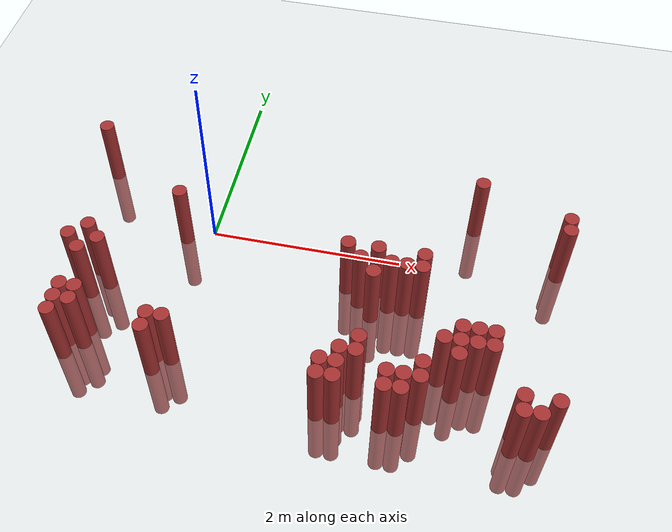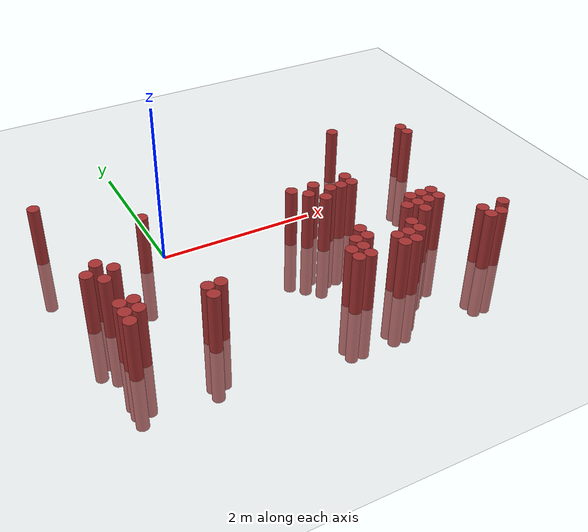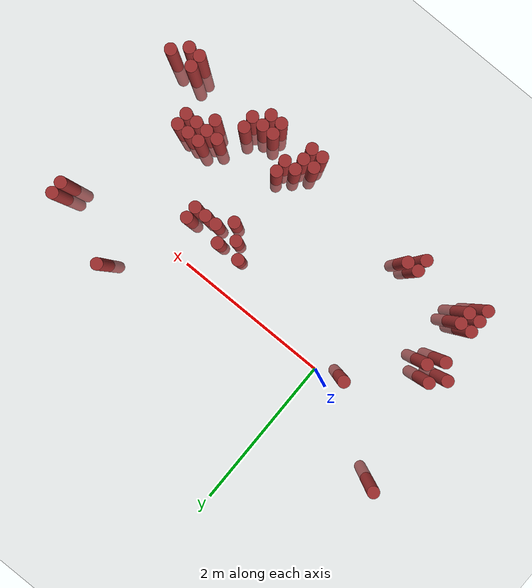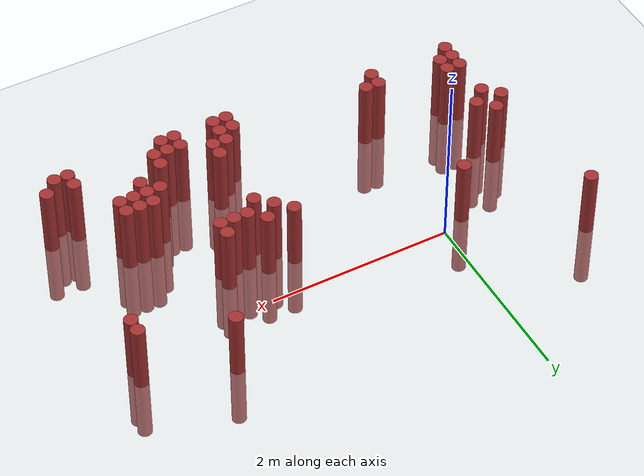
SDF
<sdf version="1.6">
 <world name="default">
  <model name="ground_plane">
   <static>1</static>
   <link name="link">
    <collision name="collision">
     <geometry><plane><normal>0 0 1</normal><size>100 100</size></plane></geometry>
     <surface><friction><ode><mu>100</mu><mu2>50</mu2></ode></friction></surface>
    </collision>
    <visual name="visual">
     <cast_shadows>0</cast_shadows>
     <geometry><plane><normal>0 0 1</normal><size>100 100</size></plane></geometry>
     <material>
      <script><uri>file://media/materials/scripts/gazebo.material</uri><name>Gazebo/Grey</name></script>
     </material>
    </visual>
   </link>
  </model>
  <model name="unit_cylinder_346">
   <static>1</static>
   <pose>-1.325000 0.625000 0.000000 0.000000 0.000000 0.000000</pose>
   <link name="link">
    <inertial>
     <mass>1</mass>
     <inertia><ixx>0.145833</ixx><ixy>0</ixy><ixz>0</ixz><iyy>0.145833</iyy><iyz>0</iyz><izz>0.125</izz></inertia>
    </inertial>
    <collision name="collision">
     <geometry><cylinder><radius>0.075000</radius><length>1.5</length></cylinder></geometry>
    </collision>
    <visual name="visual">
     <geometry><cylinder><radius>0.075000</radius><length>1.5</length></cylinder></geometry>
     <material>
      <ambient>0.648000 0.192000 0.192000 1</ambient>
      <diffuse>0.648000 0.192000 0.192000 1</diffuse>
     </material>
     <material>
      <script><name>Gazebo/Grey</name><uri>file://media/materials/scripts/gazebo.material</uri></script>
     </material>
    </visual>
   </link>
  </model>
  <model name="unit_cylinder_348">
   <static>1</static>
   <pose>-1.175000 -0.875000 0.000000 0.000000 0.000000 0.000000</pose>
   <link name="link">
    <inertial>
     <mass>1</mass>
     <inertia><ixx>0.145833</ixx><ixy>0</ixy><ixz>0</ixz><iyy>0.145833</iyy><iyz>0</iyz><izz>0.125</izz></inertia>
    </inertial>
    <collision name="collision">
     <geometry><cylinder><radius>0.075000</radius><length>1.5</length></cylinder></geometry>
    </collision>
    <visual name="visual">
     <geometry><cylinder><radius>0.075000</radius><length>1.5</length></cylinder></geometry>
     <material>
      <ambient>0.648000 0.192000 0.192000 1</ambient>
      <diffuse>0.648000 0.192000 0.192000 1</diffuse>
     </material>
     <material>
      <script><name>Gazebo/Grey</name><uri>file://media/materials/scripts/gazebo.material</uri></script>
     </material>
    </visual>
   </link>
  </model>
  <model name="unit_cylinder_350">
   <static>1</static>
   <pose>-1.025000 -1.775000 0.000000 0.000000 0.000000 0.000000</pose>
   <link name="link">
    <inertial>
     <mass>1</mass>
     <inertia><ixx>0.145833</ixx><ixy>0</ixy><ixz>0</ixz><iyy>0.145833</iyy><iyz>0</iyz><izz>0.125</izz></inertia>
    </inertial>
    <collision name="collision">
     <geometry><cylinder><radius>0.075000</radius><length>1.5</length></cylinder></geometry>
    </collision>
    <visual name="visual">
     <geometry><cylinder><radius>0.075000</radius><length>1.5</length></cylinder></geometry>
     <material>
      <ambient>0.648000 0.192000 0.192000 1</ambient>
      <diffuse>0.648000 0.192000 0.192000 1</diffuse>
     </material>
     <material>
      <script><name>Gazebo/Grey</name><uri>file://media/materials/scripts/gazebo.material</uri></script>
     </material>
    </visual>
   </link>
  </model>
  <model name="unit_cylinder_351">
   <static>1</static>
   <pose>-1.025000 -1.625000 0.000000 0.000000 0.000000 0.000000</pose>
   <link name="link">
    <inertial>
     <mass>1</mass>
     <inertia><ixx>0.145833</ixx><ixy>0</ixy><ixz>0</ixz><iyy>0.145833</iyy><iyz>0</iyz><izz>0.125</izz></inertia>
    </inertial>
    <collision name="collision">
     <geometry><cylinder><radius>0.075000</radius><length>1.5</length></cylinder></geometry>
    </collision>
    <visual name="visual">
     <geometry><cylinder><radius>0.075000</radius><length>1.5</length></cylinder></geometry>
     <material>
      <ambient>0.648000 0.192000 0.192000 1</ambient>
      <diffuse>0.648000 0.192000 0.192000 1</diffuse>
     </material>
     <material>
      <script><name>Gazebo/Grey</name><uri>file://media/materials/scripts/gazebo.material</uri></script>
     </material>
    </visual>
   </link>
  </model>
  <model name="unit_cylinder_352">
   <static>1</static>
   <pose>-1.025000 -1.475000 0.000000 0.000000 0.000000 0.000000</pose>
   <link name="link">
    <inertial>
     <mass>1</mass>
     <inertia><ixx>0.145833</ixx><ixy>0</ixy><ixz>0</ixz><iyy>0.145833</iyy><iyz>0</iyz><izz>0.125</izz></inertia>
    </inertial>
    <collision name="collision">
     <geometry><cylinder><radius>0.075000</radius><length>1.5</length></cylinder></geometry>
    </collision>
    <visual name="visual">
     <geometry><cylinder><radius>0.075000</radius><length>1.5</length></cylinder></geometry>
     <material>
      <ambient>0.648000 0.192000 0.192000 1</ambient>
      <diffuse>0.648000 0.192000 0.192000 1</diffuse>
     </material>
     <material>
      <script><name>Gazebo/Grey</name><uri>file://media/materials/scripts/gazebo.material</uri></script>
     </material>
    </visual>
   </link>
  </model>
  <model name="unit_cylinder_353">
   <static>1</static>
   <pose>-1.025000 -1.025000 0.000000 0.000000 0.000000 0.000000</pose>
   <link name="link">
    <inertial>
     <mass>1</mass>
     <inertia><ixx>0.145833</ixx><ixy>0</ixy><ixz>0</ixz><iyy>0.145833</iyy><iyz>0</iyz><izz>0.125</izz></inertia>
    </inertial>
    <collision name="collision">
     <geometry><cylinder><radius>0.075000</radius><length>1.5</length></cylinder></geometry>
    </collision>
    <visual name="visual">
     <geometry><cylinder><radius>0.075000</radius><length>1.5</length></cylinder></geometry>
     <material>
      <ambient>0.648000 0.192000 0.192000 1</ambient>
      <diffuse>0.648000 0.192000 0.192000 1</diffuse>
     </material>
     <material>
      <script><name>Gazebo/Grey</name><uri>file://media/materials/scripts/gazebo.material</uri></script>
     </material>
    </visual>
   </link>
  </model>
  <model name="unit_cylinder_354">
   <static>1</static>
   <pose>-1.025000 -0.725000 0.000000 0.000000 0.000000 0.000000</pose>
   <link name="link">
    <inertial>
     <mass>1</mass>
     <inertia><ixx>0.145833</ixx><ixy>0</ixy><ixz>0</ixz><iyy>0.145833</iyy><iyz>0</iyz><izz>0.125</izz></inertia>
    </inertial>
    <collision name="collision">
     <geometry><cylinder><radius>0.075000</radius><length>1.5</length></cylinder></geometry>
    </collision>
    <visual name="visual">
     <geometry><cylinder><radius>0.075000</radius><length>1.5</length></cylinder></geometry>
     <material>
      <ambient>0.648000 0.192000 0.192000 1</ambient>
      <diffuse>0.648000 0.192000 0.192000 1</diffuse>
     </material>
     <material>
      <script><name>Gazebo/Grey</name><uri>file://media/materials/scripts/gazebo.material</uri></script>
     </material>
    </visual>
   </link>
  </model>
  <model name="unit_cylinder_357">
   <static>1</static>
   <pose>-0.875000 -1.625000 0.000000 0.000000 0.000000 0.000000</pose>
   <link name="link">
    <inertial>
     <mass>1</mass>
     <inertia><ixx>0.145833</ixx><ixy>0</ixy><ixz>0</ixz><iyy>0.145833</iyy><iyz>0</iyz><izz>0.125</izz></inertia>
    </inertial>
    <collision name="collision">
     <geometry><cylinder><radius>0.075000</radius><length>1.5</length></cylinder></geometry>
    </collision>
    <visual name="visual">
     <geometry><cylinder><radius>0.075000</radius><length>1.5</length></cylinder></geometry>
     <material>
      <ambient>0.648000 0.192000 0.192000 1</ambient>
      <diffuse>0.648000 0.192000 0.192000 1</diffuse>
     </material>
     <material>
      <script><name>Gazebo/Grey</name><uri>file://media/materials/scripts/gazebo.material</uri></script>
     </material>
    </visual>
   </link>
  </model>
  <model name="unit_cylinder_358">
   <static>1</static>
   <pose>-0.875000 -1.475000 0.000000 0.000000 0.000000 0.000000</pose>
   <link name="link">
    <inertial>
     <mass>1</mass>
     <inertia><ixx>0.145833</ixx><ixy>0</ixy><ixz>0</ixz><iyy>0.145833</iyy><iyz>0</iyz><izz>0.125</izz></inertia>
    </inertial>
    <collision name="collision">
     <geometry><cylinder><radius>0.075000</radius><length>1.5</length></cylinder></geometry>
    </collision>
    <visual name="visual">
     <geometry><cylinder><radius>0.075000</radius><length>1.5</length></cylinder></geometry>
     <material>
      <ambient>0.648000 0.192000 0.192000 1</ambient>
      <diffuse>0.648000 0.192000 0.192000 1</diffuse>
     </material>
     <material>
      <script><name>Gazebo/Grey</name><uri>file://media/materials/scripts/gazebo.material</uri></script>
     </material>
    </visual>
   </link>
  </model>
  <model name="unit_cylinder_359">
   <static>1</static>
   <pose>-0.875000 -0.875000 0.000000 0.000000 0.000000 0.000000</pose>
   <link name="link">
    <inertial>
     <mass>1</mass>
     <inertia><ixx>0.145833</ixx><ixy>0</ixy><ixz>0</ixz><iyy>0.145833</iyy><iyz>0</iyz><izz>0.125</izz></inertia>
    </inertial>
    <collision name="collision">
     <geometry><cylinder><radius>0.075000</radius><length>1.5</length></cylinder></geometry>
    </collision>
    <visual name="visual">
     <geometry><cylinder><radius>0.075000</radius><length>1.5</length></cylinder></geometry>
     <material>
      <ambient>0.648000 0.192000 0.192000 1</ambient>
      <diffuse>0.648000 0.192000 0.192000 1</diffuse>
     </material>
     <material>
      <script><name>Gazebo/Grey</name><uri>file://media/materials/scripts/gazebo.material</uri></script>
     </material>
    </visual>
   </link>
  </model>
  <model name="unit_cylinder_376">
   <static>1</static>
   <pose>-0.275000 -0.125000 0.000000 0.000000 0.000000 0.000000</pose>
   <link name="link">
    <inertial>
     <mass>1</mass>
     <inertia><ixx>0.145833</ixx><ixy>0</ixy><ixz>0</ixz><iyy>0.145833</iyy><iyz>0</iyz><izz>0.125</izz></inertia>
    </inertial>
    <collision name="collision">
     <geometry><cylinder><radius>0.075000</radius><length>1.5</length></cylinder></geometry>
    </collision>
    <visual name="visual">
     <geometry><cylinder><radius>0.075000</radius><length>1.5</length></cylinder></geometry>
     <material>
      <ambient>0.648000 0.192000 0.192000 1</ambient>
      <diffuse>0.648000 0.192000 0.192000 1</diffuse>
     </material>
     <material>
      <script><name>Gazebo/Grey</name><uri>file://media/materials/scripts/gazebo.material</uri></script>
     </material>
    </visual>
   </link>
  </model>
  <model name="unit_cylinder_385">
   <static>1</static>
   <pose>-0.125000 -1.775000 0.000000 0.000000 0.000000 0.000000</pose>
   <link name="link">
    <inertial>
     <mass>1</mass>
     <inertia><ixx>0.145833</ixx><ixy>0</ixy><ixz>0</ixz><iyy>0.145833</iyy><iyz>0</iyz><izz>0.125</izz></inertia>
    </inertial>
    <collision name="collision">
     <geometry><cylinder><radius>0.075000</radius><length>1.5</length></cylinder></geometry>
    </collision>
    <visual name="visual">
     <geometry><cylinder><radius>0.075000</radius><length>1.5</length></cylinder></geometry>
     <material>
      <ambient>0.648000 0.192000 0.192000 1</ambient>
      <diffuse>0.648000 0.192000 0.192000 1</diffuse>
     </material>
     <material>
      <script><name>Gazebo/Grey</name><uri>file://media/materials/scripts/gazebo.material</uri></script>
     </material>
    </visual>
   </link>
  </model>
  <model name="unit_cylinder_386">
   <static>1</static>
   <pose>-0.125000 -1.625000 0.000000 0.000000 0.000000 0.000000</pose>
   <link name="link">
    <inertial>
     <mass>1</mass>
     <inertia><ixx>0.145833</ixx><ixy>0</ixy><ixz>0</ixz><iyy>0.145833</iyy><iyz>0</iyz><izz>0.125</izz></inertia>
    </inertial>
    <collision name="collision">
     <geometry><cylinder><radius>0.075000</radius><length>1.5</length></cylinder></geometry>
    </collision>
    <visual name="visual">
     <geometry><cylinder><radius>0.075000</radius><length>1.5</length></cylinder></geometry>
     <material>
      <ambient>0.648000 0.192000 0.192000 1</ambient>
      <diffuse>0.648000 0.192000 0.192000 1</diffuse>
     </material>
     <material>
      <script><name>Gazebo/Grey</name><uri>file://media/materials/scripts/gazebo.material</uri></script>
     </material>
    </visual>
   </link>
  </model>
  <model name="unit_cylinder_392">
   <static>1</static>
   <pose>0.025000 -1.625000 0.000000 0.000000 0.000000 0.000000</pose>
   <link name="link">
    <inertial>
     <mass>1</mass>
     <inertia><ixx>0.145833</ixx><ixy>0</ixy><ixz>0</ixz><iyy>0.145833</iyy><iyz>0</iyz><izz>0.125</izz></inertia>
    </inertial>
    <collision name="collision">
     <geometry><cylinder><radius>0.075000</radius><length>1.5</length></cylinder></geometry>
    </collision>
    <visual name="visual">
     <geometry><cylinder><radius>0.075000</radius><length>1.5</length></cylinder></geometry>
     <material>
      <ambient>0.648000 0.192000 0.192000 1</ambient>
      <diffuse>0.648000 0.192000 0.192000 1</diffuse>
     </material>
     <material>
      <script><name>Gazebo/Grey</name><uri>file://media/materials/scripts/gazebo.material</uri></script>
     </material>
    </visual>
   </link>
  </model>
  <model name="unit_cylinder_431">
   <static>1</static>
   <pose>1.525000 -1.925000 0.000000 0.000000 0.000000 0.000000</pose>
   <link name="link">
    <inertial>
     <mass>1</mass>
     <inertia><ixx>0.145833</ixx><ixy>0</ixy><ixz>0</ixz><iyy>0.145833</iyy><iyz>0</iyz><izz>0.125</izz></inertia>
    </inertial>
    <collision name="collision">
     <geometry><cylinder><radius>0.075000</radius><length>1.5</length></cylinder></geometry>
    </collision>
    <visual name="visual">
     <geometry><cylinder><radius>0.075000</radius><length>1.5</length></cylinder></geometry>
     <material>
      <ambient>0.648000 0.192000 0.192000 1</ambient>
      <diffuse>0.648000 0.192000 0.192000 1</diffuse>
     </material>
     <material>
      <script><name>Gazebo/Grey</name><uri>file://media/materials/scripts/gazebo.material</uri></script>
     </material>
    </visual>
   </link>
  </model>
  <model name="unit_cylinder_432">
   <static>1</static>
   <pose>1.525000 -1.775000 0.000000 0.000000 0.000000 0.000000</pose>
   <link name="link">
    <inertial>
     <mass>1</mass>
     <inertia><ixx>0.145833</ixx><ixy>0</ixy><ixz>0</ixz><iyy>0.145833</iyy><iyz>0</iyz><izz>0.125</izz></inertia>
    </inertial>
    <collision name="collision">
     <geometry><cylinder><radius>0.075000</radius><length>1.5</length></cylinder></geometry>
    </collision>
    <visual name="visual">
     <geometry><cylinder><radius>0.075000</radius><length>1.5</length></cylinder></geometry>
     <material>
      <ambient>0.648000 0.192000 0.192000 1</ambient>
      <diffuse>0.648000 0.192000 0.192000 1</diffuse>
     </material>
     <material>
      <script><name>Gazebo/Grey</name><uri>file://media/materials/scripts/gazebo.material</uri></script>
     </material>
    </visual>
   </link>
  </model>
  <model name="unit_cylinder_433">
   <static>1</static>
   <pose>1.525000 -0.425000 0.000000 0.000000 0.000000 0.000000</pose>
   <link name="link">
    <inertial>
     <mass>1</mass>
     <inertia><ixx>0.145833</ixx><ixy>0</ixy><ixz>0</ixz><iyy>0.145833</iyy><iyz>0</iyz><izz>0.125</izz></inertia>
    </inertial>
    <collision name="collision">
     <geometry><cylinder><radius>0.075000</radius><length>1.5</length></cylinder></geometry>
    </collision>
    <visual name="visual">
     <geometry><cylinder><radius>0.075000</radius><length>1.5</length></cylinder></geometry>
     <material>
      <ambient>0.648000 0.192000 0.192000 1</ambient>
      <diffuse>0.648000 0.192000 0.192000 1</diffuse>
     </material>
     <material>
      <script><name>Gazebo/Grey</name><uri>file://media/materials/scripts/gazebo.material</uri></script>
     </material>
    </visual>
   </link>
  </model>
  <model name="unit_cylinder_435">
   <static>1</static>
   <pose>1.675000 -1.925000 0.000000 0.000000 0.000000 0.000000</pose>
   <link name="link">
    <inertial>
     <mass>1</mass>
     <inertia><ixx>0.145833</ixx><ixy>0</ixy><ixz>0</ixz><iyy>0.145833</iyy><iyz>0</iyz><izz>0.125</izz></inertia>
    </inertial>
    <collision name="collision">
     <geometry><cylinder><radius>0.075000</radius><length>1.5</length></cylinder></geometry>
    </collision>
    <visual name="visual">
     <geometry><cylinder><radius>0.075000</radius><length>1.5</length></cylinder></geometry>
     <material>
      <ambient>0.648000 0.192000 0.192000 1</ambient>
      <diffuse>0.648000 0.192000 0.192000 1</diffuse>
     </material>
     <material>
      <script><name>Gazebo/Grey</name><uri>file://media/materials/scripts/gazebo.material</uri></script>
     </material>
    </visual>
   </link>
  </model>
  <model name="unit_cylinder_436">
   <static>1</static>
   <pose>1.675000 -1.775000 0.000000 0.000000 0.000000 0.000000</pose>
   <link name="link">
    <inertial>
     <mass>1</mass>
     <inertia><ixx>0.145833</ixx><ixy>0</ixy><ixz>0</ixz><iyy>0.145833</iyy><iyz>0</iyz><izz>0.125</izz></inertia>
    </inertial>
    <collision name="collision">
     <geometry><cylinder><radius>0.075000</radius><length>1.5</length></cylinder></geometry>
    </collision>
    <visual name="visual">
     <geometry><cylinder><radius>0.075000</radius><length>1.5</length></cylinder></geometry>
     <material>
      <ambient>0.648000 0.192000 0.192000 1</ambient>
      <diffuse>0.648000 0.192000 0.192000 1</diffuse>
     </material>
     <material>
      <script><name>Gazebo/Grey</name><uri>file://media/materials/scripts/gazebo.material</uri></script>
     </material>
    </visual>
   </link>
  </model>
  <model name="unit_cylinder_437">
   <static>1</static>
   <pose>1.675000 -1.625000 0.000000 0.000000 0.000000 0.000000</pose>
   <link name="link">
    <inertial>
     <mass>1</mass>
     <inertia><ixx>0.145833</ixx><ixy>0</ixy><ixz>0</ixz><iyy>0.145833</iyy><iyz>0</iyz><izz>0.125</izz></inertia>
    </inertial>
    <collision name="collision">
     <geometry><cylinder><radius>0.075000</radius><length>1.5</length></cylinder></geometry>
    </collision>
    <visual name="visual">
     <geometry><cylinder><radius>0.075000</radius><length>1.5</length></cylinder></geometry>
     <material>
      <ambient>0.648000 0.192000 0.192000 1</ambient>
      <diffuse>0.648000 0.192000 0.192000 1</diffuse>
     </material>
     <material>
      <script><name>Gazebo/Grey</name><uri>file://media/materials/scripts/gazebo.material</uri></script>
     </material>
    </visual>
   </link>
  </model>
  <model name="unit_cylinder_438">
   <static>1</static>
   <pose>1.675000 -0.575000 0.000000 0.000000 0.000000 0.000000</pose>
   <link name="link">
    <inertial>
     <mass>1</mass>
     <inertia><ixx>0.145833</ixx><ixy>0</ixy><ixz>0</ixz><iyy>0.145833</iyy><iyz>0</iyz><izz>0.125</izz></inertia>
    </inertial>
    <collision name="collision">
     <geometry><cylinder><radius>0.075000</radius><length>1.5</length></cylinder></geometry>
    </collision>
    <visual name="visual">
     <geometry><cylinder><radius>0.075000</radius><length>1.5</length></cylinder></geometry>
     <material>
      <ambient>0.648000 0.192000 0.192000 1</ambient>
      <diffuse>0.648000 0.192000 0.192000 1</diffuse>
     </material>
     <material>
      <script><name>Gazebo/Grey</name><uri>file://media/materials/scripts/gazebo.material</uri></script>
     </material>
    </visual>
   </link>
  </model>
  <model name="unit_cylinder_439">
   <static>1</static>
   <pose>1.825000 -1.625000 0.000000 0.000000 0.000000 0.000000</pose>
   <link name="link">
    <inertial>
     <mass>1</mass>
     <inertia><ixx>0.145833</ixx><ixy>0</ixy><ixz>0</ixz><iyy>0.145833</iyy><iyz>0</iyz><izz>0.125</izz></inertia>
    </inertial>
    <collision name="collision">
     <geometry><cylinder><radius>0.075000</radius><length>1.5</length></cylinder></geometry>
    </collision>
    <visual name="visual">
     <geometry><cylinder><radius>0.075000</radius><length>1.5</length></cylinder></geometry>
     <material>
      <ambient>0.648000 0.192000 0.192000 1</ambient>
      <diffuse>0.648000 0.192000 0.192000 1</diffuse>
     </material>
     <material>
      <script><name>Gazebo/Grey</name><uri>file://media/materials/scripts/gazebo.material</uri></script>
     </material>
    </visual>
   </link>
  </model>
  <model name="unit_cylinder_440">
   <static>1</static>
   <pose>1.825000 -1.475000 0.000000 0.000000 0.000000 0.000000</pose>
   <link name="link">
    <inertial>
     <mass>1</mass>
     <inertia><ixx>0.145833</ixx><ixy>0</ixy><ixz>0</ixz><iyy>0.145833</iyy><iyz>0</iyz><izz>0.125</izz></inertia>
    </inertial>
    <collision name="collision">
     <geometry><cylinder><radius>0.075000</radius><length>1.5</length></cylinder></geometry>
    </collision>
    <visual name="visual">
     <geometry><cylinder><radius>0.075000</radius><length>1.5</length></cylinder></geometry>
     <material>
      <ambient>0.648000 0.192000 0.192000 1</ambient>
      <diffuse>0.648000 0.192000 0.192000 1</diffuse>
     </material>
     <material>
      <script><name>Gazebo/Grey</name><uri>file://media/materials/scripts/gazebo.material</uri></script>
     </material>
    </visual>
   </link>
  </model>
  <model name="unit_cylinder_441">
   <static>1</static>
   <pose>1.825000 -0.725000 0.000000 0.000000 0.000000 0.000000</pose>
   <link name="link">
    <inertial>
     <mass>1</mass>
     <inertia><ixx>0.145833</ixx><ixy>0</ixy><ixz>0</ixz><iyy>0.145833</iyy><iyz>0</iyz><izz>0.125</izz></inertia>
    </inertial>
    <collision name="collision">
     <geometry><cylinder><radius>0.075000</radius><length>1.5</length></cylinder></geometry>
    </collision>
    <visual name="visual">
     <geometry><cylinder><radius>0.075000</radius><length>1.5</length></cylinder></geometry>
     <material>
      <ambient>0.648000 0.192000 0.192000 1</ambient>
      <diffuse>0.648000 0.192000 0.192000 1</diffuse>
     </material>
     <material>
      <script><name>Gazebo/Grey</name><uri>file://media/materials/scripts/gazebo.material</uri></script>
     </material>
    </visual>
   </link>
  </model>
  <model name="unit_cylinder_442">
   <static>1</static>
   <pose>1.825000 -0.425000 0.000000 0.000000 0.000000 0.000000</pose>
   <link name="link">
    <inertial>
     <mass>1</mass>
     <inertia><ixx>0.145833</ixx><ixy>0</ixy><ixz>0</ixz><iyy>0.145833</iyy><iyz>0</iyz><izz>0.125</izz></inertia>
    </inertial>
    <collision name="collision">
     <geometry><cylinder><radius>0.075000</radius><length>1.5</length></cylinder></geometry>
    </collision>
    <visual name="visual">
     <geometry><cylinder><radius>0.075000</radius><length>1.5</length></cylinder></geometry>
     <material>
      <ambient>0.648000 0.192000 0.192000 1</ambient>
      <diffuse>0.648000 0.192000 0.192000 1</diffuse>
     </material>
     <material>
      <script><name>Gazebo/Grey</name><uri>file://media/materials/scripts/gazebo.material</uri></script>
     </material>
    </visual>
   </link>
  </model>
  <model name="unit_cylinder_443">
   <static>1</static>
   <pose>1.975000 -0.575000 0.000000 0.000000 0.000000 0.000000</pose>
   <link name="link">
    <inertial>
     <mass>1</mass>
     <inertia><ixx>0.145833</ixx><ixy>0</ixy><ixz>0</ixz><iyy>0.145833</iyy><iyz>0</iyz><izz>0.125</izz></inertia>
    </inertial>
    <collision name="collision">
     <geometry><cylinder><radius>0.075000</radius><length>1.5</length></cylinder></geometry>
    </collision>
    <visual name="visual">
     <geometry><cylinder><radius>0.075000</radius><length>1.5</length></cylinder></geometry>
     <material>
      <ambient>0.648000 0.192000 0.192000 1</ambient>
      <diffuse>0.648000 0.192000 0.192000 1</diffuse>
     </material>
     <material>
      <script><name>Gazebo/Grey</name><uri>file://media/materials/scripts/gazebo.material</uri></script>
     </material>
    </visual>
   </link>
  </model>
  <model name="unit_cylinder_444">
   <static>1</static>
   <pose>2.125000 -1.925000 0.000000 0.000000 0.000000 0.000000</pose>
   <link name="link">
    <inertial>
     <mass>1</mass>
     <inertia><ixx>0.145833</ixx><ixy>0</ixy><ixz>0</ixz><iyy>0.145833</iyy><iyz>0</iyz><izz>0.125</izz></inertia>
    </inertial>
    <collision name="collision">
     <geometry><cylinder><radius>0.075000</radius><length>1.5</length></cylinder></geometry>
    </collision>
    <visual name="visual">
     <geometry><cylinder><radius>0.075000</radius><length>1.5</length></cylinder></geometry>
     <material>
      <ambient>0.648000 0.192000 0.192000 1</ambient>
      <diffuse>0.648000 0.192000 0.192000 1</diffuse>
     </material>
     <material>
      <script><name>Gazebo/Grey</name><uri>file://media/materials/scripts/gazebo.material</uri></script>
     </material>
    </visual>
   </link>
  </model>
  <model name="unit_cylinder_445">
   <static>1</static>
   <pose>2.125000 -1.775000 0.000000 0.000000 0.000000 0.000000</pose>
   <link name="link">
    <inertial>
     <mass>1</mass>
     <inertia><ixx>0.145833</ixx><ixy>0</ixy><ixz>0</ixz><iyy>0.145833</iyy><iyz>0</iyz><izz>0.125</izz></inertia>
    </inertial>
    <collision name="collision">
     <geometry><cylinder><radius>0.075000</radius><length>1.5</length></cylinder></geometry>
    </collision>
    <visual name="visual">
     <geometry><cylinder><radius>0.075000</radius><length>1.5</length></cylinder></geometry>
     <material>
      <ambient>0.648000 0.192000 0.192000 1</ambient>
      <diffuse>0.648000 0.192000 0.192000 1</diffuse>
     </material>
     <material>
      <script><name>Gazebo/Grey</name><uri>file://media/materials/scripts/gazebo.material</uri></script>
     </material>
    </visual>
   </link>
  </model>
  <model name="unit_cylinder_446">
   <static>1</static>
   <pose>2.125000 -0.575000 0.000000 0.000000 0.000000 0.000000</pose>
   <link name="link">
    <inertial>
     <mass>1</mass>
     <inertia><ixx>0.145833</ixx><ixy>0</ixy><ixz>0</ixz><iyy>0.145833</iyy><iyz>0</iyz><izz>0.125</izz></inertia>
    </inertial>
    <collision name="collision">
     <geometry><cylinder><radius>0.075000</radius><length>1.5</length></cylinder></geometry>
    </collision>
    <visual name="visual">
     <geometry><cylinder><radius>0.075000</radius><length>1.5</length></cylinder></geometry>
     <material>
      <ambient>0.648000 0.192000 0.192000 1</ambient>
      <diffuse>0.648000 0.192000 0.192000 1</diffuse>
     </material>
     <material>
      <script><name>Gazebo/Grey</name><uri>file://media/materials/scripts/gazebo.material</uri></script>
     </material>
    </visual>
   </link>
  </model>
  <model name="unit_cylinder_447">
   <static>1</static>
   <pose>2.275000 -1.925000 0.000000 0.000000 0.000000 0.000000</pose>
   <link name="link">
    <inertial>
     <mass>1</mass>
     <inertia><ixx>0.145833</ixx><ixy>0</ixy><ixz>0</ixz><iyy>0.145833</iyy><iyz>0</iyz><izz>0.125</izz></inertia>
    </inertial>
    <collision name="collision">
     <geometry><cylinder><radius>0.075000</radius><length>1.5</length></cylinder></geometry>
    </collision>
    <visual name="visual">
     <geometry><cylinder><radius>0.075000</radius><length>1.5</length></cylinder></geometry>
     <material>
      <ambient>0.648000 0.192000 0.192000 1</ambient>
      <diffuse>0.648000 0.192000 0.192000 1</diffuse>
     </material>
     <material>
      <script><name>Gazebo/Grey</name><uri>file://media/materials/scripts/gazebo.material</uri></script>
     </material>
    </visual>
   </link>
  </model>
  <model name="unit_cylinder_448">
   <static>1</static>
   <pose>2.275000 -1.775000 0.000000 0.000000 0.000000 0.000000</pose>
   <link name="link">
    <inertial>
     <mass>1</mass>
     <inertia><ixx>0.145833</ixx><ixy>0</ixy><ixz>0</ixz><iyy>0.145833</iyy><iyz>0</iyz><izz>0.125</izz></inertia>
    </inertial>
    <collision name="collision">
     <geometry><cylinder><radius>0.075000</radius><length>1.5</length></cylinder></geometry>
    </collision>
    <visual name="visual">
     <geometry><cylinder><radius>0.075000</radius><length>1.5</length></cylinder></geometry>
     <material>
      <ambient>0.648000 0.192000 0.192000 1</ambient>
      <diffuse>0.648000 0.192000 0.192000 1</diffuse>
     </material>
     <material>
      <script><name>Gazebo/Grey</name><uri>file://media/materials/scripts/gazebo.material</uri></script>
     </material>
    </visual>
   </link>
  </model>
  <model name="unit_cylinder_449">
   <static>1</static>
   <pose>2.275000 -0.575000 0.000000 0.000000 0.000000 0.000000</pose>
   <link name="link">
    <inertial>
     <mass>1</mass>
     <inertia><ixx>0.145833</ixx><ixy>0</ixy><ixz>0</ixz><iyy>0.145833</iyy><iyz>0</iyz><izz>0.125</izz></inertia>
    </inertial>
    <collision name="collision">
     <geometry><cylinder><radius>0.075000</radius><length>1.5</length></cylinder></geometry>
    </collision>
    <visual name="visual">
     <geometry><cylinder><radius>0.075000</radius><length>1.5</length></cylinder></geometry>
     <material>
      <ambient>0.648000 0.192000 0.192000 1</ambient>
      <diffuse>0.648000 0.192000 0.192000 1</diffuse>
     </material>
     <material>
      <script><name>Gazebo/Grey</name><uri>file://media/materials/scripts/gazebo.material</uri></script>
     </material>
    </visual>
   </link>
  </model>
  <model name="unit_cylinder_450">
   <static>1</static>
   <pose>2.275000 -0.425000 0.000000 0.000000 0.000000 0.000000</pose>
   <link name="link">
    <inertial>
     <mass>1</mass>
     <inertia><ixx>0.145833</ixx><ixy>0</ixy><ixz>0</ixz><iyy>0.145833</iyy><iyz>0</iyz><izz>0.125</izz></inertia>
    </inertial>
    <collision name="collision">
     <geometry><cylinder><radius>0.075000</radius><length>1.5</length></cylinder></geometry>
    </collision>
    <visual name="visual">
     <geometry><cylinder><radius>0.075000</radius><length>1.5</length></cylinder></geometry>
     <material>
      <ambient>0.648000 0.192000 0.192000 1</ambient>
      <diffuse>0.648000 0.192000 0.192000 1</diffuse>
     </material>
     <material>
      <script><name>Gazebo/Grey</name><uri>file://media/materials/scripts/gazebo.material</uri></script>
     </material>
    </visual>
   </link>
  </model>
  <model name="unit_cylinder_452">
   <static>1</static>
   <pose>2.425000 -1.775000 0.000000 0.000000 0.000000 0.000000</pose>
   <link name="link">
    <inertial>
     <mass>1</mass>
     <inertia><ixx>0.145833</ixx><ixy>0</ixy><ixz>0</ixz><iyy>0.145833</iyy><iyz>0</iyz><izz>0.125</izz></inertia>
    </inertial>
    <collision name="collision">
     <geometry><cylinder><radius>0.075000</radius><length>1.5</length></cylinder></geometry>
    </collision>
    <visual name="visual">
     <geometry><cylinder><radius>0.075000</radius><length>1.5</length></cylinder></geometry>
     <material>
      <ambient>0.648000 0.192000 0.192000 1</ambient>
      <diffuse>0.648000 0.192000 0.192000 1</diffuse>
     </material>
     <material>
      <script><name>Gazebo/Grey</name><uri>file://media/materials/scripts/gazebo.material</uri></script>
     </material>
    </visual>
   </link>
  </model>
  <model name="unit_cylinder_453">
   <static>1</static>
   <pose>2.425000 -1.625000 0.000000 0.000000 0.000000 0.000000</pose>
   <link name="link">
    <inertial>
     <mass>1</mass>
     <inertia><ixx>0.145833</ixx><ixy>0</ixy><ixz>0</ixz><iyy>0.145833</iyy><iyz>0</iyz><izz>0.125</izz></inertia>
    </inertial>
    <collision name="collision">
     <geometry><cylinder><radius>0.075000</radius><length>1.5</length></cylinder></geometry>
    </collision>
    <visual name="visual">
     <geometry><cylinder><radius>0.075000</radius><length>1.5</length></cylinder></geometry>
     <material>
      <ambient>0.648000 0.192000 0.192000 1</ambient>
      <diffuse>0.648000 0.192000 0.192000 1</diffuse>
     </material>
     <material>
      <script><name>Gazebo/Grey</name><uri>file://media/materials/scripts/gazebo.material</uri></script>
     </material>
    </visual>
   </link>
  </model>
  <model name="unit_cylinder_456">
   <static>1</static>
   <pose>2.575000 -1.325000 0.000000 0.000000 0.000000 0.000000</pose>
   <link name="link">
    <inertial>
     <mass>1</mass>
     <inertia><ixx>0.145833</ixx><ixy>0</ixy><ixz>0</ixz><iyy>0.145833</iyy><iyz>0</iyz><izz>0.125</izz></inertia>
    </inertial>
    <collision name="collision">
     <geometry><cylinder><radius>0.075000</radius><length>1.5</length></cylinder></geometry>
    </collision>
    <visual name="visual">
     <geometry><cylinder><radius>0.075000</radius><length>1.5</length></cylinder></geometry>
     <material>
      <ambient>0.648000 0.192000 0.192000 1</ambient>
      <diffuse>0.648000 0.192000 0.192000 1</diffuse>
     </material>
     <material>
      <script><name>Gazebo/Grey</name><uri>file://media/materials/scripts/gazebo.material</uri></script>
     </material>
    </visual>
   </link>
  </model>
  <model name="unit_cylinder_459">
   <static>1</static>
   <pose>2.725000 -1.475000 0.000000 0.000000 0.000000 0.000000</pose>
   <link name="link">
    <inertial>
     <mass>1</mass>
     <inertia><ixx>0.145833</ixx><ixy>0</ixy><ixz>0</ixz><iyy>0.145833</iyy><iyz>0</iyz><izz>0.125</izz></inertia>
    </inertial>
    <collision name="collision">
     <geometry><cylinder><radius>0.075000</radius><length>1.5</length></cylinder></geometry>
    </collision>
    <visual name="visual">
     <geometry><cylinder><radius>0.075000</radius><length>1.5</length></cylinder></geometry>
     <material>
      <ambient>0.648000 0.192000 0.192000 1</ambient>
      <diffuse>0.648000 0.192000 0.192000 1</diffuse>
     </material>
     <material>
      <script><name>Gazebo/Grey</name><uri>file://media/materials/scripts/gazebo.material</uri></script>
     </material>
    </visual>
   </link>
  </model>
  <model name="unit_cylinder_460">
   <static>1</static>
   <pose>2.725000 -1.325000 0.000000 0.000000 0.000000 0.000000</pose>
   <link name="link">
    <inertial>
     <mass>1</mass>
     <inertia><ixx>0.145833</ixx><ixy>0</ixy><ixz>0</ixz><iyy>0.145833</iyy><iyz>0</iyz><izz>0.125</izz></inertia>
    </inertial>
    <collision name="collision">
     <geometry><cylinder><radius>0.075000</radius><length>1.5</length></cylinder></geometry>
    </collision>
    <visual name="visual">
     <geometry><cylinder><radius>0.075000</radius><length>1.5</length></cylinder></geometry>
     <material>
      <ambient>0.648000 0.192000 0.192000 1</ambient>
      <diffuse>0.648000 0.192000 0.192000 1</diffuse>
     </material>
     <material>
      <script><name>Gazebo/Grey</name><uri>file://media/materials/scripts/gazebo.material</uri></script>
     </material>
    </visual>
   </link>
  </model>
  <model name="unit_cylinder_461">
   <static>1</static>
   <pose>2.725000 -1.175000 0.000000 0.000000 0.000000 0.000000</pose>
   <link name="link">
    <inertial>
     <mass>1</mass>
     <inertia><ixx>0.145833</ixx><ixy>0</ixy><ixz>0</ixz><iyy>0.145833</iyy><iyz>0</iyz><izz>0.125</izz></inertia>
    </inertial>
    <collision name="collision">
     <geometry><cylinder><radius>0.075000</radius><length>1.5</length></cylinder></geometry>
    </collision>
    <visual name="visual">
     <geometry><cylinder><radius>0.075000</radius><length>1.5</length></cylinder></geometry>
     <material>
      <ambient>0.648000 0.192000 0.192000 1</ambient>
      <diffuse>0.648000 0.192000 0.192000 1</diffuse>
     </material>
     <material>
      <script><name>Gazebo/Grey</name><uri>file://media/materials/scripts/gazebo.material</uri></script>
     </material>
    </visual>
   </link>
  </model>
  <model name="unit_cylinder_462">
   <static>1</static>
   <pose>2.725000 0.625000 0.000000 0.000000 0.000000 0.000000</pose>
   <link name="link">
    <inertial>
     <mass>1</mass>
     <inertia><ixx>0.145833</ixx><ixy>0</ixy><ixz>0</ixz><iyy>0.145833</iyy><iyz>0</iyz><izz>0.125</izz></inertia>
    </inertial>
    <collision name="collision">
     <geometry><cylinder><radius>0.075000</radius><length>1.5</length></cylinder></geometry>
    </collision>
    <visual name="visual">
     <geometry><cylinder><radius>0.075000</radius><length>1.5</length></cylinder></geometry>
     <material>
      <ambient>0.648000 0.192000 0.192000 1</ambient>
      <diffuse>0.648000 0.192000 0.192000 1</diffuse>
     </material>
     <material>
      <script><name>Gazebo/Grey</name><uri>file://media/materials/scripts/gazebo.material</uri></script>
     </material>
    </visual>
   </link>
  </model>
  <model name="unit_cylinder_464">
   <static>1</static>
   <pose>2.875000 -1.325000 0.000000 0.000000 0.000000 0.000000</pose>
   <link name="link">
    <inertial>
     <mass>1</mass>
     <inertia><ixx>0.145833</ixx><ixy>0</ixy><ixz>0</ixz><iyy>0.145833</iyy><iyz>0</iyz><izz>0.125</izz></inertia>
    </inertial>
    <collision name="collision">
     <geometry><cylinder><radius>0.075000</radius><length>1.5</length></cylinder></geometry>
    </collision>
    <visual name="visual">
     <geometry><cylinder><radius>0.075000</radius><length>1.5</length></cylinder></geometry>
     <material>
      <ambient>0.648000 0.192000 0.192000 1</ambient>
      <diffuse>0.648000 0.192000 0.192000 1</diffuse>
     </material>
     <material>
      <script><name>Gazebo/Grey</name><uri>file://media/materials/scripts/gazebo.material</uri></script>
     </material>
    </visual>
   </link>
  </model>
  <model name="unit_cylinder_465">
   <static>1</static>
   <pose>2.875000 -1.175000 0.000000 0.000000 0.000000 0.000000</pose>
   <link name="link">
    <inertial>
     <mass>1</mass>
     <inertia><ixx>0.145833</ixx><ixy>0</ixy><ixz>0</ixz><iyy>0.145833</iyy><iyz>0</iyz><izz>0.125</izz></inertia>
    </inertial>
    <collision name="collision">
     <geometry><cylinder><radius>0.075000</radius><length>1.5</length></cylinder></geometry>
    </collision>
    <visual name="visual">
     <geometry><cylinder><radius>0.075000</radius><length>1.5</length></cylinder></geometry>
     <material>
      <ambient>0.648000 0.192000 0.192000 1</ambient>
      <diffuse>0.648000 0.192000 0.192000 1</diffuse>
     </material>
     <material>
      <script><name>Gazebo/Grey</name><uri>file://media/materials/scripts/gazebo.material</uri></script>
     </material>
    </visual>
   </link>
  </model>
  <model name="unit_cylinder_469">
   <static>1</static>
   <pose>3.025000 -1.325000 0.000000 0.000000 0.000000 0.000000</pose>
   <link name="link">
    <inertial>
     <mass>1</mass>
     <inertia><ixx>0.145833</ixx><ixy>0</ixy><ixz>0</ixz><iyy>0.145833</iyy><iyz>0</iyz><izz>0.125</izz></inertia>
    </inertial>
    <collision name="collision">
     <geometry><cylinder><radius>0.075000</radius><length>1.5</length></cylinder></geometry>
    </collision>
    <visual name="visual">
     <geometry><cylinder><radius>0.075000</radius><length>1.5</length></cylinder></geometry>
     <material>
      <ambient>0.648000 0.192000 0.192000 1</ambient>
      <diffuse>0.648000 0.192000 0.192000 1</diffuse>
     </material>
     <material>
      <script><name>Gazebo/Grey</name><uri>file://media/materials/scripts/gazebo.material</uri></script>
     </material>
    </visual>
   </link>
  </model>
  <model name="unit_cylinder_470">
   <static>1</static>
   <pose>3.025000 -1.175000 0.000000 0.000000 0.000000 0.000000</pose>
   <link name="link">
    <inertial>
     <mass>1</mass>
     <inertia><ixx>0.145833</ixx><ixy>0</ixy><ixz>0</ixz><iyy>0.145833</iyy><iyz>0</iyz><izz>0.125</izz></inertia>
    </inertial>
    <collision name="collision">
     <geometry><cylinder><radius>0.075000</radius><length>1.5</length></cylinder></geometry>
    </collision>
    <visual name="visual">
     <geometry><cylinder><radius>0.075000</radius><length>1.5</length></cylinder></geometry>
     <material>
      <ambient>0.648000 0.192000 0.192000 1</ambient>
      <diffuse>0.648000 0.192000 0.192000 1</diffuse>
     </material>
     <material>
      <script><name>Gazebo/Grey</name><uri>file://media/materials/scripts/gazebo.material</uri></script>
     </material>
    </visual>
   </link>
  </model>
  <model name="unit_cylinder_474">
   <static>1</static>
   <pose>3.325000 -1.925000 0.000000 0.000000 0.000000 0.000000</pose>
   <link name="link">
    <inertial>
     <mass>1</mass>
     <inertia><ixx>0.145833</ixx><ixy>0</ixy><ixz>0</ixz><iyy>0.145833</iyy><iyz>0</iyz><izz>0.125</izz></inertia>
    </inertial>
    <collision name="collision">
     <geometry><cylinder><radius>0.075000</radius><length>1.5</length></cylinder></geometry>
    </collision>
    <visual name="visual">
     <geometry><cylinder><radius>0.075000</radius><length>1.5</length></cylinder></geometry>
     <material>
      <ambient>0.648000 0.192000 0.192000 1</ambient>
      <diffuse>0.648000 0.192000 0.192000 1</diffuse>
     </material>
     <material>
      <script><name>Gazebo/Grey</name><uri>file://media/materials/scripts/gazebo.material</uri></script>
     </material>
    </visual>
   </link>
  </model>
  <model name="unit_cylinder_475">
   <static>1</static>
   <pose>3.325000 -1.775000 0.000000 0.000000 0.000000 0.000000</pose>
   <link name="link">
    <inertial>
     <mass>1</mass>
     <inertia><ixx>0.145833</ixx><ixy>0</ixy><ixz>0</ixz><iyy>0.145833</iyy><iyz>0</iyz><izz>0.125</izz></inertia>
    </inertial>
    <collision name="collision">
     <geometry><cylinder><radius>0.075000</radius><length>1.5</length></cylinder></geometry>
    </collision>
    <visual name="visual">
     <geometry><cylinder><radius>0.075000</radius><length>1.5</length></cylinder></geometry>
     <material>
      <ambient>0.648000 0.192000 0.192000 1</ambient>
      <diffuse>0.648000 0.192000 0.192000 1</diffuse>
     </material>
     <material>
      <script><name>Gazebo/Grey</name><uri>file://media/materials/scripts/gazebo.material</uri></script>
     </material>
    </visual>
   </link>
  </model>
  <model name="unit_cylinder_476">
   <static>1</static>
   <pose>3.475000 -1.925000 0.000000 0.000000 0.000000 0.000000</pose>
   <link name="link">
    <inertial>
     <mass>1</mass>
     <inertia><ixx>0.145833</ixx><ixy>0</ixy><ixz>0</ixz><iyy>0.145833</iyy><iyz>0</iyz><izz>0.125</izz></inertia>
    </inertial>
    <collision name="collision">
     <geometry><cylinder><radius>0.075000</radius><length>1.5</length></cylinder></geometry>
    </collision>
    <visual name="visual">
     <geometry><cylinder><radius>0.075000</radius><length>1.5</length></cylinder></geometry>
     <material>
      <ambient>0.648000 0.192000 0.192000 1</ambient>
      <diffuse>0.648000 0.192000 0.192000 1</diffuse>
     </material>
     <material>
      <script><name>Gazebo/Grey</name><uri>file://media/materials/scripts/gazebo.material</uri></script>
     </material>
    </visual>
   </link>
  </model>
  <model name="unit_cylinder_478">
   <static>1</static>
   <pose>3.625000 -1.775000 0.000000 0.000000 0.000000 0.000000</pose>
   <link name="link">
    <inertial>
     <mass>1</mass>
     <inertia><ixx>0.145833</ixx><ixy>0</ixy><ixz>0</ixz><iyy>0.145833</iyy><iyz>0</iyz><izz>0.125</izz></inertia>
    </inertial>
    <collision name="collision">
     <geometry><cylinder><radius>0.075000</radius><length>1.5</length></cylinder></geometry>
    </collision>
    <visual name="visual">
     <geometry><cylinder><radius>0.075000</radius><length>1.5</length></cylinder></geometry>
     <material>
      <ambient>0.648000 0.192000 0.192000 1</ambient>
      <diffuse>0.648000 0.192000 0.192000 1</diffuse>
     </material>
     <material>
      <script><name>Gazebo/Grey</name><uri>file://media/materials/scripts/gazebo.material</uri></script>
     </material>
    </visual>
   </link>
  </model>
  <model name="unit_cylinder_479">
   <static>1</static>
   <pose>3.625000 0.175000 0.000000 0.000000 0.000000 0.000000</pose>
   <link name="link">
    <inertial>
     <mass>1</mass>
     <inertia><ixx>0.145833</ixx><ixy>0</ixy><ixz>0</ixz><iyy>0.145833</iyy><iyz>0</iyz><izz>0.125</izz></inertia>
    </inertial>
    <collision name="collision">
     <geometry><cylinder><radius>0.075000</radius><length>1.5</length></cylinder></geometry>
    </collision>
    <visual name="visual">
     <geometry><cylinder><radius>0.075000</radius><length>1.5</length></cylinder></geometry>
     <material>
      <ambient>0.648000 0.192000 0.192000 1</ambient>
      <diffuse>0.648000 0.192000 0.192000 1</diffuse>
     </material>
     <material>
      <script><name>Gazebo/Grey</name><uri>file://media/materials/scripts/gazebo.material</uri></script>
     </material>
    </visual>
   </link>
  </model>
  <model name="unit_cylinder_480">
   <static>1</static>
   <pose>3.625000 0.325000 0.000000 0.000000 0.000000 0.000000</pose>
   <link name="link">
    <inertial>
     <mass>1</mass>
     <inertia><ixx>0.145833</ixx><ixy>0</ixy><ixz>0</ixz><iyy>0.145833</iyy><iyz>0</iyz><izz>0.125</izz></inertia>
    </inertial>
    <collision name="collision">
     <geometry><cylinder><radius>0.075000</radius><length>1.5</length></cylinder></geometry>
    </collision>
    <visual name="visual">
     <geometry><cylinder><radius>0.075000</radius><length>1.5</length></cylinder></geometry>
     <material>
      <ambient>0.648000 0.192000 0.192000 1</ambient>
      <diffuse>0.648000 0.192000 0.192000 1</diffuse>
     </material>
     <material>
      <script><name>Gazebo/Grey</name><uri>file://media/materials/scripts/gazebo.material</uri></script>
     </material>
    </visual>
   </link>
  </model>
 </world>
</sdf>
